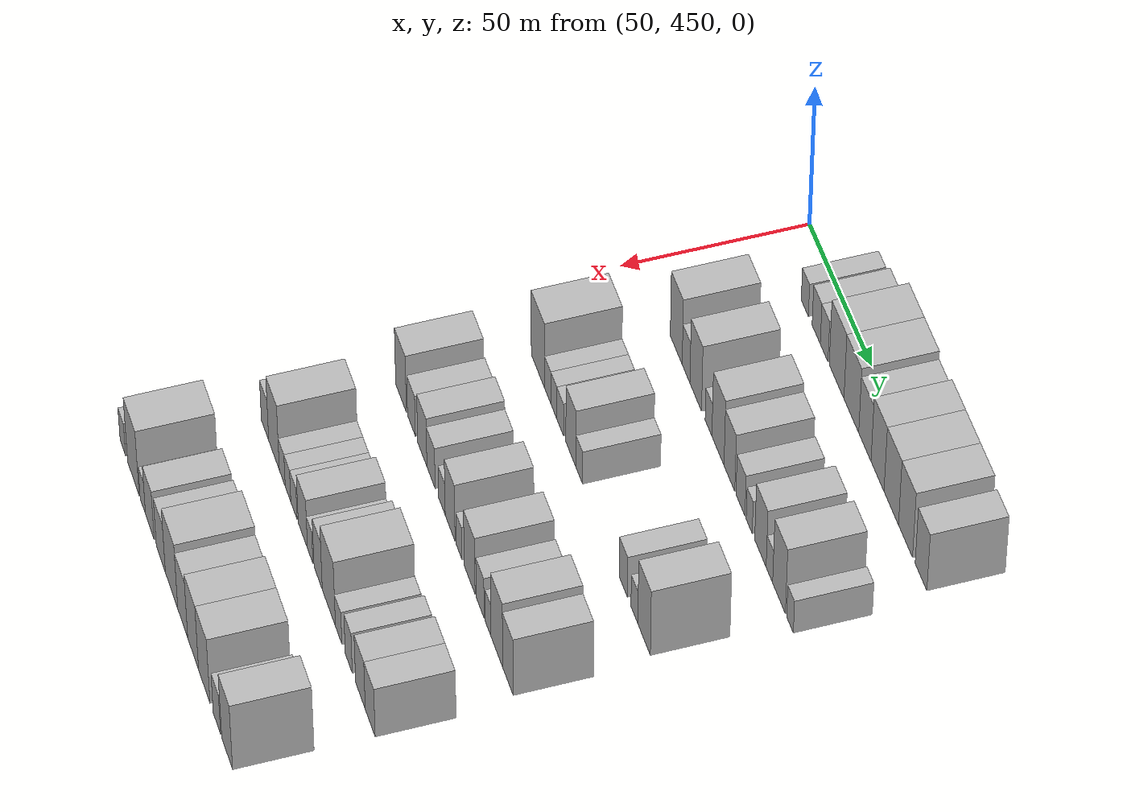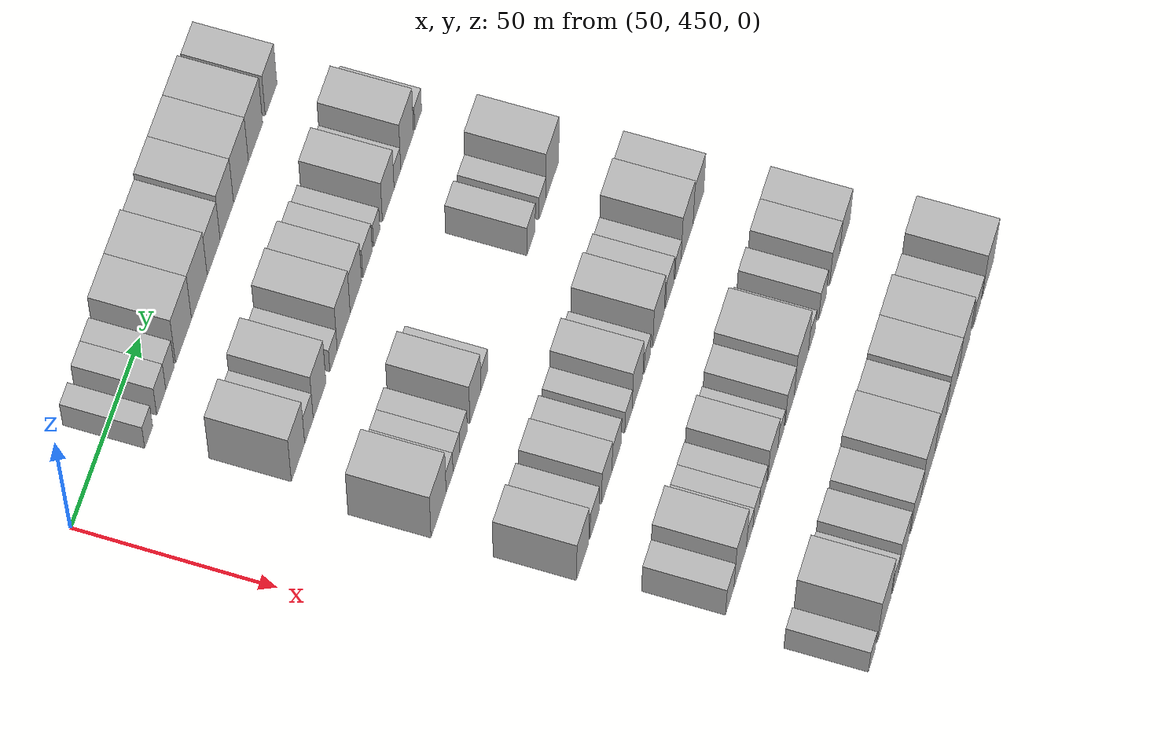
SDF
<sdf version="1.6">
 <world name="default">
  <model name="building_108">
   <static>1</static>
   <pose>50.0000 476.8534 0 0.000000 0.000000 0.000000</pose>
   <link name="link">
    <pose>0 0 6.00 0 0 0</pose>
    <collision name="collision"><geometry><box><size>20.0000 5.7782 12.0000</size></box></geometry></collision>
    <visual name="visual">
     <cast_shadows>0</cast_shadows>
     <geometry><box><size>20.0000 5.7782 12.0000</size></box></geometry>
     <material>
      <script>
       <uri>model://HANNAS_wall/materials/scripts</uri>
       <uri>model://HANNAS_wall/materials/textures</uri>
       <name>vrc/HANNAS_wall</name>
      </script>
     </material>
    </visual>
   </link>
  </model>
  <model name="building_109">
   <static>1</static>
   <pose>50.0000 486.0334 0 0.000000 0.000000 0.000000</pose>
   <link name="link">
    <pose>0 0 7.50 0 0 0</pose>
    <collision name="collision"><geometry><box><size>20.0000 6.5818 15.0000</size></box></geometry></collision>
    <visual name="visual">
     <cast_shadows>0</cast_shadows>
     <geometry><box><size>20.0000 6.5818 15.0000</size></box></geometry>
     <material>
      <script>
       <uri>model://HANNAS_wall/materials/scripts</uri>
       <uri>model://HANNAS_wall/materials/textures</uri>
       <name>vrc/HANNAS_wall</name>
      </script>
     </material>
    </visual>
   </link>
  </model>
  <model name="building_110">
   <static>1</static>
   <pose>50.0000 492.4070 0 0.000000 0.000000 0.000000</pose>
   <link name="link">
    <pose>0 0 7.50 0 0 0</pose>
    <collision name="collision"><geometry><box><size>20.0000 6.1655 15.0000</size></box></geometry></collision>
    <visual name="visual">
     <cast_shadows>0</cast_shadows>
     <geometry><box><size>20.0000 6.1655 15.0000</size></box></geometry>
     <material>
      <script>
       <uri>model://HANNAS_wall/materials/scripts</uri>
       <uri>model://HANNAS_wall/materials/textures</uri>
       <name>vrc/HANNAS_wall</name>
      </script>
     </material>
    </visual>
   </link>
  </model>
  <model name="building_111">
   <static>1</static>
   <pose>50.0000 502.3611 0 0.000000 0.000000 0.000000</pose>
   <link name="link">
    <pose>0 0 12.00 0 0 0</pose>
    <collision name="collision"><geometry><box><size>20.0000 11.7425 24.0000</size></box></geometry></collision>
    <visual name="visual">
     <cast_shadows>0</cast_shadows>
     <geometry><box><size>20.0000 11.7425 24.0000</size></box></geometry>
     <material>
      <script>
       <uri>model://HANNAS_wall/materials/scripts</uri>
       <uri>model://HANNAS_wall/materials/textures</uri>
       <name>vrc/HANNAS_wall</name>
      </script>
     </material>
    </visual>
   </link>
  </model>
  <model name="building_112">
   <static>1</static>
   <pose>50.0000 514.0625 0 0.000000 0.000000 0.000000</pose>
   <link name="link">
    <pose>0 0 12.00 0 0 0</pose>
    <collision name="collision"><geometry><box><size>20.0000 11.6603 24.0000</size></box></geometry></collision>
    <visual name="visual">
     <cast_shadows>0</cast_shadows>
     <geometry><box><size>20.0000 11.6603 24.0000</size></box></geometry>
     <material>
      <script>
       <uri>model://HANNAS_wall/materials/scripts</uri>
       <uri>model://HANNAS_wall/materials/textures</uri>
       <name>vrc/HANNAS_wall</name>
      </script>
     </material>
    </visual>
   </link>
  </model>
  <model name="building_113">
   <static>1</static>
   <pose>50.0000 524.7127 0 0.000000 0.000000 0.000000</pose>
   <link name="link">
    <pose>0 0 10.50 0 0 0</pose>
    <collision name="collision"><geometry><box><size>20.0000 9.6402 21.0000</size></box></geometry></collision>
    <visual name="visual">
     <cast_shadows>0</cast_shadows>
     <geometry><box><size>20.0000 9.6402 21.0000</size></box></geometry>
     <material>
      <script>
       <uri>model://HANNAS_wall/materials/scripts</uri>
       <uri>model://HANNAS_wall/materials/textures</uri>
       <name>vrc/HANNAS_wall</name>
      </script>
     </material>
    </visual>
   </link>
  </model>
  <model name="building_114">
   <static>1</static>
   <pose>50.0000 534.5840 0 0.000000 0.000000 0.000000</pose>
   <link name="link">
    <pose>0 0 12.00 0 0 0</pose>
    <collision name="collision"><geometry><box><size>20.0000 10.1022 24.0000</size></box></geometry></collision>
    <visual name="visual">
     <cast_shadows>0</cast_shadows>
     <geometry><box><size>20.0000 10.1022 24.0000</size></box></geometry>
     <material>
      <script>
       <uri>model://HANNAS_wall/materials/scripts</uri>
       <uri>model://HANNAS_wall/materials/textures</uri>
       <name>vrc/HANNAS_wall</name>
      </script>
     </material>
    </visual>
   </link>
  </model>
  <model name="building_115">
   <static>1</static>
   <pose>50.0000 545.2295 0 0.000000 0.000000 0.000000</pose>
   <link name="link">
    <pose>0 0 12.00 0 0 0</pose>
    <collision name="collision"><geometry><box><size>20.0000 11.1888 24.0000</size></box></geometry></collision>
    <visual name="visual">
     <cast_shadows>0</cast_shadows>
     <geometry><box><size>20.0000 11.1888 24.0000</size></box></geometry>
     <material>
      <script>
       <uri>model://HANNAS_wall/materials/scripts</uri>
       <uri>model://HANNAS_wall/materials/textures</uri>
       <name>vrc/HANNAS_wall</name>
      </script>
     </material>
    </visual>
   </link>
  </model>
  <model name="building_116">
   <static>1</static>
   <pose>50.0000 556.2054 0 0.000000 0.000000 0.000000</pose>
   <link name="link">
    <pose>0 0 12.00 0 0 0</pose>
    <collision name="collision"><geometry><box><size>20.0000 10.7631 24.0000</size></box></geometry></collision>
    <visual name="visual">
     <cast_shadows>0</cast_shadows>
     <geometry><box><size>20.0000 10.7631 24.0000</size></box></geometry>
     <material>
      <script>
       <uri>model://HANNAS_wall/materials/scripts</uri>
       <uri>model://HANNAS_wall/materials/textures</uri>
       <name>vrc/HANNAS_wall</name>
      </script>
     </material>
    </visual>
   </link>
  </model>
  <model name="building_117">
   <static>1</static>
   <pose>50.0000 568.0357 0 0.000000 0.000000 0.000000</pose>
   <link name="link">
    <pose>0 0 10.50 0 0 0</pose>
    <collision name="collision"><geometry><box><size>20.0000 8.8975 21.0000</size></box></geometry></collision>
    <visual name="visual">
     <cast_shadows>0</cast_shadows>
     <geometry><box><size>20.0000 8.8975 21.0000</size></box></geometry>
     <material>
      <script>
       <uri>model://HANNAS_wall/materials/scripts</uri>
       <uri>model://HANNAS_wall/materials/textures</uri>
       <name>vrc/HANNAS_wall</name>
      </script>
     </material>
    </visual>
   </link>
  </model>
  <model name="building_232">
   <static>1</static>
   <pose>85.0000 480.9673 0 0.000000 0.000000 0.000000</pose>
   <link name="link">
    <pose>0 0 12.00 0 0 0</pose>
    <collision name="collision"><geometry><box><size>20.0000 9.9538 24.0000</size></box></geometry></collision>
    <visual name="visual">
     <cast_shadows>0</cast_shadows>
     <geometry><box><size>20.0000 9.9538 24.0000</size></box></geometry>
     <material>
      <script>
       <uri>model://HANNAS_wall/materials/scripts</uri>
       <uri>model://HANNAS_wall/materials/textures</uri>
       <name>vrc/HANNAS_wall</name>
      </script>
     </material>
    </visual>
   </link>
  </model>
  <model name="building_233">
   <static>1</static>
   <pose>85.0000 489.1557 0 0.000000 0.000000 0.000000</pose>
   <link name="link">
    <pose>0 0 7.50 0 0 0</pose>
    <collision name="collision"><geometry><box><size>20.0000 6.4229 15.0000</size></box></geometry></collision>
    <visual name="visual">
     <cast_shadows>0</cast_shadows>
     <geometry><box><size>20.0000 6.4229 15.0000</size></box></geometry>
     <material>
      <script>
       <uri>model://HANNAS_wall/materials/scripts</uri>
       <uri>model://HANNAS_wall/materials/textures</uri>
       <name>vrc/HANNAS_wall</name>
      </script>
     </material>
    </visual>
   </link>
  </model>
  <model name="building_234">
   <static>1</static>
   <pose>85.0000 497.1807 0 0.000000 0.000000 0.000000</pose>
   <link name="link">
    <pose>0 0 12.00 0 0 0</pose>
    <collision name="collision"><geometry><box><size>20.0000 9.6271 24.0000</size></box></geometry></collision>
    <visual name="visual">
     <cast_shadows>0</cast_shadows>
     <geometry><box><size>20.0000 9.6271 24.0000</size></box></geometry>
     <material>
      <script>
       <uri>model://HANNAS_wall/materials/scripts</uri>
       <uri>model://HANNAS_wall/materials/textures</uri>
       <name>vrc/HANNAS_wall</name>
      </script>
     </material>
    </visual>
   </link>
  </model>
  <model name="building_235">
   <static>1</static>
   <pose>85.0000 507.7611 0 0.000000 0.000000 0.000000</pose>
   <link name="link">
    <pose>0 0 6.00 0 0 0</pose>
    <collision name="collision"><geometry><box><size>20.0000 5.5336 12.0000</size></box></geometry></collision>
    <visual name="visual">
     <cast_shadows>0</cast_shadows>
     <geometry><box><size>20.0000 5.5336 12.0000</size></box></geometry>
     <material>
      <script>
       <uri>model://HANNAS_wall/materials/scripts</uri>
       <uri>model://HANNAS_wall/materials/textures</uri>
       <name>vrc/HANNAS_wall</name>
      </script>
     </material>
    </visual>
   </link>
  </model>
  <model name="building_236">
   <static>1</static>
   <pose>85.0000 515.4776 0 0.000000 0.000000 0.000000</pose>
   <link name="link">
    <pose>0 0 12.00 0 0 0</pose>
    <collision name="collision"><geometry><box><size>20.0000 9.8996 24.0000</size></box></geometry></collision>
    <visual name="visual">
     <cast_shadows>0</cast_shadows>
     <geometry><box><size>20.0000 9.8996 24.0000</size></box></geometry>
     <material>
      <script>
       <uri>model://HANNAS_wall/materials/scripts</uri>
       <uri>model://HANNAS_wall/materials/textures</uri>
       <name>vrc/HANNAS_wall</name>
      </script>
     </material>
    </visual>
   </link>
  </model>
  <model name="building_237">
   <static>1</static>
   <pose>85.0000 524.7871 0 0.000000 0.000000 0.000000</pose>
   <link name="link">
    <pose>0 0 10.50 0 0 0</pose>
    <collision name="collision"><geometry><box><size>20.0000 8.7194 21.0000</size></box></geometry></collision>
    <visual name="visual">
     <cast_shadows>0</cast_shadows>
     <geometry><box><size>20.0000 8.7194 21.0000</size></box></geometry>
     <material>
      <script>
       <uri>model://HANNAS_wall/materials/scripts</uri>
       <uri>model://HANNAS_wall/materials/textures</uri>
       <name>vrc/HANNAS_wall</name>
      </script>
     </material>
    </visual>
   </link>
  </model>
  <model name="building_238">
   <static>1</static>
   <pose>85.0000 533.7659 0 0.000000 0.000000 0.000000</pose>
   <link name="link">
    <pose>0 0 7.50 0 0 0</pose>
    <collision name="collision"><geometry><box><size>20.0000 7.2380 15.0000</size></box></geometry></collision>
    <visual name="visual">
     <cast_shadows>0</cast_shadows>
     <geometry><box><size>20.0000 7.2380 15.0000</size></box></geometry>
     <material>
      <script>
       <uri>model://HANNAS_wall/materials/scripts</uri>
       <uri>model://HANNAS_wall/materials/textures</uri>
       <name>vrc/HANNAS_wall</name>
      </script>
     </material>
    </visual>
   </link>
  </model>
  <model name="building_239">
   <static>1</static>
   <pose>85.0000 540.8009 0 0.000000 0.000000 0.000000</pose>
   <link name="link">
    <pose>0 0 6.00 0 0 0</pose>
    <collision name="collision"><geometry><box><size>20.0000 4.8321 12.0000</size></box></geometry></collision>
    <visual name="visual">
     <cast_shadows>0</cast_shadows>
     <geometry><box><size>20.0000 4.8321 12.0000</size></box></geometry>
     <material>
      <script>
       <uri>model://HANNAS_wall/materials/scripts</uri>
       <uri>model://HANNAS_wall/materials/textures</uri>
       <name>vrc/HANNAS_wall</name>
      </script>
     </material>
    </visual>
   </link>
  </model>
  <model name="building_240">
   <static>1</static>
   <pose>85.0000 549.7596 0 0.000000 0.000000 0.000000</pose>
   <link name="link">
    <pose>0 0 10.50 0 0 0</pose>
    <collision name="collision"><geometry><box><size>20.0000 9.0853 21.0000</size></box></geometry></collision>
    <visual name="visual">
     <cast_shadows>0</cast_shadows>
     <geometry><box><size>20.0000 9.0853 21.0000</size></box></geometry>
     <material>
      <script>
       <uri>model://HANNAS_wall/materials/scripts</uri>
       <uri>model://HANNAS_wall/materials/textures</uri>
       <name>vrc/HANNAS_wall</name>
      </script>
     </material>
    </visual>
   </link>
  </model>
  <model name="building_241">
   <static>1</static>
   <pose>85.0000 556.8891 0 0.000000 0.000000 0.000000</pose>
   <link name="link">
    <pose>0 0 6.00 0 0 0</pose>
    <collision name="collision"><geometry><box><size>20.0000 5.1736 12.0000</size></box></geometry></collision>
    <visual name="visual">
     <cast_shadows>0</cast_shadows>
     <geometry><box><size>20.0000 5.1736 12.0000</size></box></geometry>
     <material>
      <script>
       <uri>model://HANNAS_wall/materials/scripts</uri>
       <uri>model://HANNAS_wall/materials/textures</uri>
       <name>vrc/HANNAS_wall</name>
      </script>
     </material>
    </visual>
   </link>
  </model>
  <model name="building_242">
   <static>1</static>
   <pose>85.0000 564.4912 0 0.000000 0.000000 0.000000</pose>
   <link name="link">
    <pose>0 0 12.00 0 0 0</pose>
    <collision name="collision"><geometry><box><size>20.0000 10.0307 24.0000</size></box></geometry></collision>
    <visual name="visual">
     <cast_shadows>0</cast_shadows>
     <geometry><box><size>20.0000 10.0307 24.0000</size></box></geometry>
     <material>
      <script>
       <uri>model://HANNAS_wall/materials/scripts</uri>
       <uri>model://HANNAS_wall/materials/textures</uri>
       <name>vrc/HANNAS_wall</name>
      </script>
     </material>
    </visual>
   </link>
  </model>
  <model name="building_243">
   <static>1</static>
   <pose>85.0000 573.1451 0 0.000000 0.000000 0.000000</pose>
   <link name="link">
    <pose>0 0 6.00 0 0 0</pose>
    <collision name="collision"><geometry><box><size>20.0000 5.2771 12.0000</size></box></geometry></collision>
    <visual name="visual">
     <cast_shadows>0</cast_shadows>
     <geometry><box><size>20.0000 5.2771 12.0000</size></box></geometry>
     <material>
      <script>
       <uri>model://HANNAS_wall/materials/scripts</uri>
       <uri>model://HANNAS_wall/materials/textures</uri>
       <name>vrc/HANNAS_wall</name>
      </script>
     </material>
    </visual>
   </link>
  </model>
  <model name="building_355">
   <static>1</static>
   <pose>120.0000 477.8535 0 0.000000 0.000000 0.000000</pose>
   <link name="link">
    <pose>0 0 12.00 0 0 0</pose>
    <collision name="collision"><geometry><box><size>20.0000 11.5922 24.0000</size></box></geometry></collision>
    <visual name="visual">
     <cast_shadows>0</cast_shadows>
     <geometry><box><size>20.0000 11.5922 24.0000</size></box></geometry>
     <material>
      <script>
       <uri>model://HANNAS_wall/materials/scripts</uri>
       <uri>model://HANNAS_wall/materials/textures</uri>
       <name>vrc/HANNAS_wall</name>
      </script>
     </material>
    </visual>
   </link>
  </model>
  <model name="building_356">
   <static>1</static>
   <pose>120.0000 486.3181 0 0.000000 0.000000 0.000000</pose>
   <link name="link">
    <pose>0 0 6.00 0 0 0</pose>
    <collision name="collision"><geometry><box><size>20.0000 5.3369 12.0000</size></box></geometry></collision>
    <visual name="visual">
     <cast_shadows>0</cast_shadows>
     <geometry><box><size>20.0000 5.3369 12.0000</size></box></geometry>
     <material>
      <script>
       <uri>model://HANNAS_wall/materials/scripts</uri>
       <uri>model://HANNAS_wall/materials/textures</uri>
       <name>vrc/HANNAS_wall</name>
      </script>
     </material>
    </visual>
   </link>
  </model>
  <model name="building_357">
   <static>1</static>
   <pose>120.0000 491.5768 0 0.000000 0.000000 0.000000</pose>
   <link name="link">
    <pose>0 0 6.00 0 0 0</pose>
    <collision name="collision"><geometry><box><size>20.0000 5.1805 12.0000</size></box></geometry></collision>
    <visual name="visual">
     <cast_shadows>0</cast_shadows>
     <geometry><box><size>20.0000 5.1805 12.0000</size></box></geometry>
     <material>
      <script>
       <uri>model://HANNAS_wall/materials/scripts</uri>
       <uri>model://HANNAS_wall/materials/textures</uri>
       <name>vrc/HANNAS_wall</name>
      </script>
     </material>
    </visual>
   </link>
  </model>
  <model name="building_358">
   <static>1</static>
   <pose>120.0000 497.0789 0 0.000000 0.000000 0.000000</pose>
   <link name="link">
    <pose>0 0 6.00 0 0 0</pose>
    <collision name="collision"><geometry><box><size>20.0000 5.8236 12.0000</size></box></geometry></collision>
    <visual name="visual">
     <cast_shadows>0</cast_shadows>
     <geometry><box><size>20.0000 5.8236 12.0000</size></box></geometry>
     <material>
      <script>
       <uri>model://HANNAS_wall/materials/scripts</uri>
       <uri>model://HANNAS_wall/materials/textures</uri>
       <name>vrc/HANNAS_wall</name>
      </script>
     </material>
    </visual>
   </link>
  </model>
  <model name="building_359">
   <static>1</static>
   <pose>120.0000 506.2852 0 0.000000 0.000000 0.000000</pose>
   <link name="link">
    <pose>0 0 10.50 0 0 0</pose>
    <collision name="collision"><geometry><box><size>20.0000 8.5891 21.0000</size></box></geometry></collision>
    <visual name="visual">
     <cast_shadows>0</cast_shadows>
     <geometry><box><size>20.0000 8.5891 21.0000</size></box></geometry>
     <material>
      <script>
       <uri>model://HANNAS_wall/materials/scripts</uri>
       <uri>model://HANNAS_wall/materials/textures</uri>
       <name>vrc/HANNAS_wall</name>
      </script>
     </material>
    </visual>
   </link>
  </model>
  <model name="building_360">
   <static>1</static>
   <pose>120.0000 513.3887 0 0.000000 0.000000 0.000000</pose>
   <link name="link">
    <pose>0 0 6.00 0 0 0</pose>
    <collision name="collision"><geometry><box><size>20.0000 5.6178 12.0000</size></box></geometry></collision>
    <visual name="visual">
     <cast_shadows>0</cast_shadows>
     <geometry><box><size>20.0000 5.6178 12.0000</size></box></geometry>
     <material>
      <script>
       <uri>model://HANNAS_wall/materials/scripts</uri>
       <uri>model://HANNAS_wall/materials/textures</uri>
       <name>vrc/HANNAS_wall</name>
      </script>
     </material>
    </visual>
   </link>
  </model>
  <model name="building_361">
   <static>1</static>
   <pose>120.0000 550.3050 0 0.000000 0.000000 0.000000</pose>
   <link name="link">
    <pose>0 0 7.50 0 0 0</pose>
    <collision name="collision"><geometry><box><size>20.0000 6.7383 15.0000</size></box></geometry></collision>
    <visual name="visual">
     <cast_shadows>0</cast_shadows>
     <geometry><box><size>20.0000 6.7383 15.0000</size></box></geometry>
     <material>
      <script>
       <uri>model://HANNAS_wall/materials/scripts</uri>
       <uri>model://HANNAS_wall/materials/textures</uri>
       <name>vrc/HANNAS_wall</name>
      </script>
     </material>
    </visual>
   </link>
  </model>
  <model name="building_362">
   <static>1</static>
   <pose>120.0000 559.4986 0 0.000000 0.000000 0.000000</pose>
   <link name="link">
    <pose>0 0 6.00 0 0 0</pose>
    <collision name="collision"><geometry><box><size>20.0000 5.6490 12.0000</size></box></geometry></collision>
    <visual name="visual">
     <cast_shadows>0</cast_shadows>
     <geometry><box><size>20.0000 5.6490 12.0000</size></box></geometry>
     <material>
      <script>
       <uri>model://HANNAS_wall/materials/scripts</uri>
       <uri>model://HANNAS_wall/materials/textures</uri>
       <name>vrc/HANNAS_wall</name>
      </script>
     </material>
    </visual>
   </link>
  </model>
  <model name="building_363">
   <static>1</static>
   <pose>120.0000 567.4306 0 0.000000 0.000000 0.000000</pose>
   <link name="link">
    <pose>0 0 12.00 0 0 0</pose>
    <collision name="collision"><geometry><box><size>20.0000 10.2149 24.0000</size></box></geometry></collision>
    <visual name="visual">
     <cast_shadows>0</cast_shadows>
     <geometry><box><size>20.0000 10.2149 24.0000</size></box></geometry>
     <material>
      <script>
       <uri>model://HANNAS_wall/materials/scripts</uri>
       <uri>model://HANNAS_wall/materials/textures</uri>
       <name>vrc/HANNAS_wall</name>
      </script>
     </material>
    </visual>
   </link>
  </model>
  <model name="building_477">
   <static>1</static>
   <pose>155.0000 476.6463 0 0.000000 0.000000 0.000000</pose>
   <link name="link">
    <pose>0 0 10.50 0 0 0</pose>
    <collision name="collision"><geometry><box><size>20.0000 9.6530 21.0000</size></box></geometry></collision>
    <visual name="visual">
     <cast_shadows>0</cast_shadows>
     <geometry><box><size>20.0000 9.6530 21.0000</size></box></geometry>
     <material>
      <script>
       <uri>model://HANNAS_wall/materials/scripts</uri>
       <uri>model://HANNAS_wall/materials/textures</uri>
       <name>vrc/HANNAS_wall</name>
      </script>
     </material>
    </visual>
   </link>
  </model>
  <model name="building_478">
   <static>1</static>
   <pose>155.0000 486.0501 0 0.000000 0.000000 0.000000</pose>
   <link name="link">
    <pose>0 0 7.50 0 0 0</pose>
    <collision name="collision"><geometry><box><size>20.0000 7.1548 15.0000</size></box></geometry></collision>
    <visual name="visual">
     <cast_shadows>0</cast_shadows>
     <geometry><box><size>20.0000 7.1548 15.0000</size></box></geometry>
     <material>
      <script>
       <uri>model://HANNAS_wall/materials/scripts</uri>
       <uri>model://HANNAS_wall/materials/textures</uri>
       <name>vrc/HANNAS_wall</name>
      </script>
     </material>
    </visual>
   </link>
  </model>
  <model name="building_479">
   <static>1</static>
   <pose>155.0000 495.7822 0 0.000000 0.000000 0.000000</pose>
   <link name="link">
    <pose>0 0 9.00 0 0 0</pose>
    <collision name="collision"><geometry><box><size>20.0000 8.3094 18.0000</size></box></geometry></collision>
    <visual name="visual">
     <cast_shadows>0</cast_shadows>
     <geometry><box><size>20.0000 8.3094 18.0000</size></box></geometry>
     <material>
      <script>
       <uri>model://HANNAS_wall/materials/scripts</uri>
       <uri>model://HANNAS_wall/materials/textures</uri>
       <name>vrc/HANNAS_wall</name>
      </script>
     </material>
    </visual>
   </link>
  </model>
  <model name="building_480">
   <static>1</static>
   <pose>155.0000 503.6037 0 0.000000 0.000000 0.000000</pose>
   <link name="link">
    <pose>0 0 7.50 0 0 0</pose>
    <collision name="collision"><geometry><box><size>20.0000 7.3335 15.0000</size></box></geometry></collision>
    <visual name="visual">
     <cast_shadows>0</cast_shadows>
     <geometry><box><size>20.0000 7.3335 15.0000</size></box></geometry>
     <material>
      <script>
       <uri>model://HANNAS_wall/materials/scripts</uri>
       <uri>model://HANNAS_wall/materials/textures</uri>
       <name>vrc/HANNAS_wall</name>
      </script>
     </material>
    </visual>
   </link>
  </model>
  <model name="building_481">
   <static>1</static>
   <pose>155.0000 513.2215 0 0.000000 0.000000 0.000000</pose>
   <link name="link">
    <pose>0 0 6.00 0 0 0</pose>
    <collision name="collision"><geometry><box><size>20.0000 5.9022 12.0000</size></box></geometry></collision>
    <visual name="visual">
     <cast_shadows>0</cast_shadows>
     <geometry><box><size>20.0000 5.9022 12.0000</size></box></geometry>
     <material>
      <script>
       <uri>model://HANNAS_wall/materials/scripts</uri>
       <uri>model://HANNAS_wall/materials/textures</uri>
       <name>vrc/HANNAS_wall</name>
      </script>
     </material>
    </visual>
   </link>
  </model>
  <model name="building_482">
   <static>1</static>
   <pose>155.0000 520.5018 0 0.000000 0.000000 0.000000</pose>
   <link name="link">
    <pose>0 0 10.50 0 0 0</pose>
    <collision name="collision"><geometry><box><size>20.0000 8.6583 21.0000</size></box></geometry></collision>
    <visual name="visual">
     <cast_shadows>0</cast_shadows>
     <geometry><box><size>20.0000 8.6583 21.0000</size></box></geometry>
     <material>
      <script>
       <uri>model://HANNAS_wall/materials/scripts</uri>
       <uri>model://HANNAS_wall/materials/textures</uri>
       <name>vrc/HANNAS_wall</name>
      </script>
     </material>
    </visual>
   </link>
  </model>
  <model name="building_483">
   <static>1</static>
   <pose>155.0000 528.3558 0 0.000000 0.000000 0.000000</pose>
   <link name="link">
    <pose>0 0 6.00 0 0 0</pose>
    <collision name="collision"><geometry><box><size>20.0000 5.0499 12.0000</size></box></geometry></collision>
    <visual name="visual">
     <cast_shadows>0</cast_shadows>
     <geometry><box><size>20.0000 5.0499 12.0000</size></box></geometry>
     <material>
      <script>
       <uri>model://HANNAS_wall/materials/scripts</uri>
       <uri>model://HANNAS_wall/materials/textures</uri>
       <name>vrc/HANNAS_wall</name>
      </script>
     </material>
    </visual>
   </link>
  </model>
  <model name="building_484">
   <static>1</static>
   <pose>155.0000 537.5668 0 0.000000 0.000000 0.000000</pose>
   <link name="link">
    <pose>0 0 10.50 0 0 0</pose>
    <collision name="collision"><geometry><box><size>20.0000 9.3721 21.0000</size></box></geometry></collision>
    <visual name="visual">
     <cast_shadows>0</cast_shadows>
     <geometry><box><size>20.0000 9.3721 21.0000</size></box></geometry>
     <material>
      <script>
       <uri>model://HANNAS_wall/materials/scripts</uri>
       <uri>model://HANNAS_wall/materials/textures</uri>
       <name>vrc/HANNAS_wall</name>
      </script>
     </material>
    </visual>
   </link>
  </model>
  <model name="building_485">
   <static>1</static>
   <pose>155.0000 546.6877 0 0.000000 0.000000 0.000000</pose>
   <link name="link">
    <pose>0 0 7.50 0 0 0</pose>
    <collision name="collision"><geometry><box><size>20.0000 6.8697 15.0000</size></box></geometry></collision>
    <visual name="visual">
     <cast_shadows>0</cast_shadows>
     <geometry><box><size>20.0000 6.8697 15.0000</size></box></geometry>
     <material>
      <script>
       <uri>model://HANNAS_wall/materials/scripts</uri>
       <uri>model://HANNAS_wall/materials/textures</uri>
       <name>vrc/HANNAS_wall</name>
      </script>
     </material>
    </visual>
   </link>
  </model>
  <model name="building_486">
   <static>1</static>
   <pose>155.0000 553.5681 0 0.000000 0.000000 0.000000</pose>
   <link name="link">
    <pose>0 0 6.00 0 0 0</pose>
    <collision name="collision"><geometry><box><size>20.0000 4.8910 12.0000</size></box></geometry></collision>
    <visual name="visual">
     <cast_shadows>0</cast_shadows>
     <geometry><box><size>20.0000 4.8910 12.0000</size></box></geometry>
     <material>
      <script>
       <uri>model://HANNAS_wall/materials/scripts</uri>
       <uri>model://HANNAS_wall/materials/textures</uri>
       <name>vrc/HANNAS_wall</name>
      </script>
     </material>
    </visual>
   </link>
  </model>
  <model name="building_487">
   <static>1</static>
   <pose>155.0000 561.0278 0 0.000000 0.000000 0.000000</pose>
   <link name="link">
    <pose>0 0 12.00 0 0 0</pose>
    <collision name="collision"><geometry><box><size>20.0000 10.0286 24.0000</size></box></geometry></collision>
    <visual name="visual">
     <cast_shadows>0</cast_shadows>
     <geometry><box><size>20.0000 10.0286 24.0000</size></box></geometry>
     <material>
      <script>
       <uri>model://HANNAS_wall/materials/scripts</uri>
       <uri>model://HANNAS_wall/materials/textures</uri>
       <name>vrc/HANNAS_wall</name>
      </script>
     </material>
    </visual>
   </link>
  </model>
  <model name="building_488">
   <static>1</static>
   <pose>155.0000 570.4711 0 0.000000 0.000000 0.000000</pose>
   <link name="link">
    <pose>0 0 10.50 0 0 0</pose>
    <collision name="collision"><geometry><box><size>20.0000 8.8579 21.0000</size></box></geometry></collision>
    <visual name="visual">
     <cast_shadows>0</cast_shadows>
     <geometry><box><size>20.0000 8.8579 21.0000</size></box></geometry>
     <material>
      <script>
       <uri>model://HANNAS_wall/materials/scripts</uri>
       <uri>model://HANNAS_wall/materials/textures</uri>
       <name>vrc/HANNAS_wall</name>
      </script>
     </material>
    </visual>
   </link>
  </model>
  <model name="building_607">
   <static>1</static>
   <pose>190.0000 477.1397 0 0.000000 0.000000 0.000000</pose>
   <link name="link">
    <pose>0 0 7.50 0 0 0</pose>
    <collision name="collision"><geometry><box><size>20.0000 6.9206 15.0000</size></box></geometry></collision>
    <visual name="visual">
     <cast_shadows>0</cast_shadows>
     <geometry><box><size>20.0000 6.9206 15.0000</size></box></geometry>
     <material>
      <script>
       <uri>model://HANNAS_wall/materials/scripts</uri>
       <uri>model://HANNAS_wall/materials/textures</uri>
       <name>vrc/HANNAS_wall</name>
      </script>
     </material>
    </visual>
   </link>
  </model>
  <model name="building_608">
   <static>1</static>
   <pose>190.0000 485.6102 0 0.000000 0.000000 0.000000</pose>
   <link name="link">
    <pose>0 0 12.00 0 0 0</pose>
    <collision name="collision"><geometry><box><size>20.0000 10.0204 24.0000</size></box></geometry></collision>
    <visual name="visual">
     <cast_shadows>0</cast_shadows>
     <geometry><box><size>20.0000 10.0204 24.0000</size></box></geometry>
     <material>
      <script>
       <uri>model://HANNAS_wall/materials/scripts</uri>
       <uri>model://HANNAS_wall/materials/textures</uri>
       <name>vrc/HANNAS_wall</name>
      </script>
     </material>
    </visual>
   </link>
  </model>
  <model name="building_609">
   <static>1</static>
   <pose>190.0000 493.3635 0 0.000000 0.000000 0.000000</pose>
   <link name="link">
    <pose>0 0 6.00 0 0 0</pose>
    <collision name="collision"><geometry><box><size>20.0000 5.4864 12.0000</size></box></geometry></collision>
    <visual name="visual">
     <cast_shadows>0</cast_shadows>
     <geometry><box><size>20.0000 5.4864 12.0000</size></box></geometry>
     <material>
      <script>
       <uri>model://HANNAS_wall/materials/scripts</uri>
       <uri>model://HANNAS_wall/materials/textures</uri>
       <name>vrc/HANNAS_wall</name>
      </script>
     </material>
    </visual>
   </link>
  </model>
  <model name="building_610">
   <static>1</static>
   <pose>190.0000 498.7189 0 0.000000 0.000000 0.000000</pose>
   <link name="link">
    <pose>0 0 6.00 0 0 0</pose>
    <collision name="collision"><geometry><box><size>20.0000 5.2244 12.0000</size></box></geometry></collision>
    <visual name="visual">
     <cast_shadows>0</cast_shadows>
     <geometry><box><size>20.0000 5.2244 12.0000</size></box></geometry>
     <material>
      <script>
       <uri>model://HANNAS_wall/materials/scripts</uri>
       <uri>model://HANNAS_wall/materials/textures</uri>
       <name>vrc/HANNAS_wall</name>
      </script>
     </material>
    </visual>
   </link>
  </model>
  <model name="building_611">
   <static>1</static>
   <pose>190.0000 504.2691 0 0.000000 0.000000 0.000000</pose>
   <link name="link">
    <pose>0 0 6.00 0 0 0</pose>
    <collision name="collision"><geometry><box><size>20.0000 5.8760 12.0000</size></box></geometry></collision>
    <visual name="visual">
     <cast_shadows>0</cast_shadows>
     <geometry><box><size>20.0000 5.8760 12.0000</size></box></geometry>
     <material>
      <script>
       <uri>model://HANNAS_wall/materials/scripts</uri>
       <uri>model://HANNAS_wall/materials/textures</uri>
       <name>vrc/HANNAS_wall</name>
      </script>
     </material>
    </visual>
   </link>
  </model>
  <model name="building_612">
   <static>1</static>
   <pose>190.0000 512.4683 0 0.000000 0.000000 0.000000</pose>
   <link name="link">
    <pose>0 0 9.00 0 0 0</pose>
    <collision name="collision"><geometry><box><size>20.0000 8.5224 18.0000</size></box></geometry></collision>
    <visual name="visual">
     <cast_shadows>0</cast_shadows>
     <geometry><box><size>20.0000 8.5224 18.0000</size></box></geometry>
     <material>
      <script>
       <uri>model://HANNAS_wall/materials/scripts</uri>
       <uri>model://HANNAS_wall/materials/textures</uri>
       <name>vrc/HANNAS_wall</name>
      </script>
     </material>
    </visual>
   </link>
  </model>
  <model name="building_613">
   <static>1</static>
   <pose>190.0000 519.2357 0 0.000000 0.000000 0.000000</pose>
   <link name="link">
    <pose>0 0 6.00 0 0 0</pose>
    <collision name="collision"><geometry><box><size>20.0000 5.0125 12.0000</size></box></geometry></collision>
    <visual name="visual">
     <cast_shadows>0</cast_shadows>
     <geometry><box><size>20.0000 5.0125 12.0000</size></box></geometry>
     <material>
      <script>
       <uri>model://HANNAS_wall/materials/scripts</uri>
       <uri>model://HANNAS_wall/materials/textures</uri>
       <name>vrc/HANNAS_wall</name>
      </script>
     </material>
    </visual>
   </link>
  </model>
  <model name="building_614">
   <static>1</static>
   <pose>190.0000 526.5103 0 0.000000 0.000000 0.000000</pose>
   <link name="link">
    <pose>0 0 9.00 0 0 0</pose>
    <collision name="collision"><geometry><box><size>20.0000 7.5366 18.0000</size></box></geometry></collision>
    <visual name="visual">
     <cast_shadows>0</cast_shadows>
     <geometry><box><size>20.0000 7.5366 18.0000</size></box></geometry>
     <material>
      <script>
       <uri>model://HANNAS_wall/materials/scripts</uri>
       <uri>model://HANNAS_wall/materials/textures</uri>
       <name>vrc/HANNAS_wall</name>
      </script>
     </material>
    </visual>
   </link>
  </model>
  <model name="building_615">
   <static>1</static>
   <pose>190.0000 536.2456 0 0.000000 0.000000 0.000000</pose>
   <link name="link">
    <pose>0 0 12.00 0 0 0</pose>
    <collision name="collision"><geometry><box><size>20.0000 11.9341 24.0000</size></box></geometry></collision>
    <visual name="visual">
     <cast_shadows>0</cast_shadows>
     <geometry><box><size>20.0000 11.9341 24.0000</size></box></geometry>
     <material>
      <script>
       <uri>model://HANNAS_wall/materials/scripts</uri>
       <uri>model://HANNAS_wall/materials/textures</uri>
       <name>vrc/HANNAS_wall</name>
      </script>
     </material>
    </visual>
   </link>
  </model>
  <model name="building_616">
   <static>1</static>
   <pose>190.0000 545.1127 0 0.000000 0.000000 0.000000</pose>
   <link name="link">
    <pose>0 0 6.00 0 0 0</pose>
    <collision name="collision"><geometry><box><size>20.0000 5.8002 12.0000</size></box></geometry></collision>
    <visual name="visual">
     <cast_shadows>0</cast_shadows>
     <geometry><box><size>20.0000 5.8002 12.0000</size></box></geometry>
     <material>
      <script>
       <uri>model://HANNAS_wall/materials/scripts</uri>
       <uri>model://HANNAS_wall/materials/textures</uri>
       <name>vrc/HANNAS_wall</name>
      </script>
     </material>
    </visual>
   </link>
  </model>
  <model name="building_617">
   <static>1</static>
   <pose>190.0000 554.1620 0 0.000000 0.000000 0.000000</pose>
   <link name="link">
    <pose>0 0 7.50 0 0 0</pose>
    <collision name="collision"><geometry><box><size>20.0000 6.2983 15.0000</size></box></geometry></collision>
    <visual name="visual">
     <cast_shadows>0</cast_shadows>
     <geometry><box><size>20.0000 6.2983 15.0000</size></box></geometry>
     <material>
      <script>
       <uri>model://HANNAS_wall/materials/scripts</uri>
       <uri>model://HANNAS_wall/materials/textures</uri>
       <name>vrc/HANNAS_wall</name>
      </script>
     </material>
    </visual>
   </link>
  </model>
  <model name="building_618">
   <static>1</static>
   <pose>190.0000 564.5860 0 0.000000 0.000000 0.000000</pose>
   <link name="link">
    <pose>0 0 9.00 0 0 0</pose>
    <collision name="collision"><geometry><box><size>20.0000 8.5497 18.0000</size></box></geometry></collision>
    <visual name="visual">
     <cast_shadows>0</cast_shadows>
     <geometry><box><size>20.0000 8.5497 18.0000</size></box></geometry>
     <material>
      <script>
       <uri>model://HANNAS_wall/materials/scripts</uri>
       <uri>model://HANNAS_wall/materials/textures</uri>
       <name>vrc/HANNAS_wall</name>
      </script>
     </material>
    </visual>
   </link>
  </model>
  <model name="building_619">
   <static>1</static>
   <pose>190.0000 573.2235 0 0.000000 0.000000 0.000000</pose>
   <link name="link">
    <pose>0 0 9.00 0 0 0</pose>
    <collision name="collision"><geometry><box><size>20.0000 8.7254 18.0000</size></box></geometry></collision>
    <visual name="visual">
     <cast_shadows>0</cast_shadows>
     <geometry><box><size>20.0000 8.7254 18.0000</size></box></geometry>
     <material>
      <script>
       <uri>model://HANNAS_wall/materials/scripts</uri>
       <uri>model://HANNAS_wall/materials/textures</uri>
       <name>vrc/HANNAS_wall</name>
      </script>
     </material>
    </visual>
   </link>
  </model>
  <model name="building_733">
   <static>1</static>
   <pose>225.0000 472.5632 0 0.000000 0.000000 0.000000</pose>
   <link name="link">
    <pose>0 0 6.00 0 0 0</pose>
    <collision name="collision"><geometry><box><size>20.0000 5.4198 12.0000</size></box></geometry></collision>
    <visual name="visual">
     <cast_shadows>0</cast_shadows>
     <geometry><box><size>20.0000 5.4198 12.0000</size></box></geometry>
     <material>
      <script>
       <uri>model://HANNAS_wall/materials/scripts</uri>
       <uri>model://HANNAS_wall/materials/textures</uri>
       <name>vrc/HANNAS_wall</name>
      </script>
     </material>
    </visual>
   </link>
  </model>
  <model name="building_734">
   <static>1</static>
   <pose>225.0000 482.9969 0 0.000000 0.000000 0.000000</pose>
   <link name="link">
    <pose>0 0 12.00 0 0 0</pose>
    <collision name="collision"><geometry><box><size>20.0000 11.4476 24.0000</size></box></geometry></collision>
    <visual name="visual">
     <cast_shadows>0</cast_shadows>
     <geometry><box><size>20.0000 11.4476 24.0000</size></box></geometry>
     <material>
      <script>
       <uri>model://HANNAS_wall/materials/scripts</uri>
       <uri>model://HANNAS_wall/materials/textures</uri>
       <name>vrc/HANNAS_wall</name>
      </script>
     </material>
    </visual>
   </link>
  </model>
  <model name="building_735">
   <static>1</static>
   <pose>225.0000 492.2996 0 0.000000 0.000000 0.000000</pose>
   <link name="link">
    <pose>0 0 6.00 0 0 0</pose>
    <collision name="collision"><geometry><box><size>20.0000 5.1578 12.0000</size></box></geometry></collision>
    <visual name="visual">
     <cast_shadows>0</cast_shadows>
     <geometry><box><size>20.0000 5.1578 12.0000</size></box></geometry>
     <material>
      <script>
       <uri>model://HANNAS_wall/materials/scripts</uri>
       <uri>model://HANNAS_wall/materials/textures</uri>
       <name>vrc/HANNAS_wall</name>
      </script>
     </material>
    </visual>
   </link>
  </model>
  <model name="building_736">
   <static>1</static>
   <pose>225.0000 499.1376 0 0.000000 0.000000 0.000000</pose>
   <link name="link">
    <pose>0 0 9.00 0 0 0</pose>
    <collision name="collision"><geometry><box><size>20.0000 8.5182 18.0000</size></box></geometry></collision>
    <visual name="visual">
     <cast_shadows>0</cast_shadows>
     <geometry><box><size>20.0000 8.5182 18.0000</size></box></geometry>
     <material>
      <script>
       <uri>model://HANNAS_wall/materials/scripts</uri>
       <uri>model://HANNAS_wall/materials/textures</uri>
       <name>vrc/HANNAS_wall</name>
      </script>
     </material>
    </visual>
   </link>
  </model>
  <model name="building_737">
   <static>1</static>
   <pose>225.0000 509.7912 0 0.000000 0.000000 0.000000</pose>
   <link name="link">
    <pose>0 0 9.00 0 0 0</pose>
    <collision name="collision"><geometry><box><size>20.0000 8.7891 18.0000</size></box></geometry></collision>
    <visual name="visual">
     <cast_shadows>0</cast_shadows>
     <geometry><box><size>20.0000 8.7891 18.0000</size></box></geometry>
     <material>
      <script>
       <uri>model://HANNAS_wall/materials/scripts</uri>
       <uri>model://HANNAS_wall/materials/textures</uri>
       <name>vrc/HANNAS_wall</name>
      </script>
     </material>
    </visual>
   </link>
  </model>
  <model name="building_738">
   <static>1</static>
   <pose>225.0000 520.1275 0 0.000000 0.000000 0.000000</pose>
   <link name="link">
    <pose>0 0 12.00 0 0 0</pose>
    <collision name="collision"><geometry><box><size>20.0000 11.8835 24.0000</size></box></geometry></collision>
    <visual name="visual">
     <cast_shadows>0</cast_shadows>
     <geometry><box><size>20.0000 11.8835 24.0000</size></box></geometry>
     <material>
      <script>
       <uri>model://HANNAS_wall/materials/scripts</uri>
       <uri>model://HANNAS_wall/materials/textures</uri>
       <name>vrc/HANNAS_wall</name>
      </script>
     </material>
    </visual>
   </link>
  </model>
  <model name="building_739">
   <static>1</static>
   <pose>225.0000 530.8205 0 0.000000 0.000000 0.000000</pose>
   <link name="link">
    <pose>0 0 10.50 0 0 0</pose>
    <collision name="collision"><geometry><box><size>20.0000 9.5025 21.0000</size></box></geometry></collision>
    <visual name="visual">
     <cast_shadows>0</cast_shadows>
     <geometry><box><size>20.0000 9.5025 21.0000</size></box></geometry>
     <material>
      <script>
       <uri>model://HANNAS_wall/materials/scripts</uri>
       <uri>model://HANNAS_wall/materials/textures</uri>
       <name>vrc/HANNAS_wall</name>
      </script>
     </material>
    </visual>
   </link>
  </model>
  <model name="building_740">
   <static>1</static>
   <pose>225.0000 540.6843 0 0.000000 0.000000 0.000000</pose>
   <link name="link">
    <pose>0 0 12.00 0 0 0</pose>
    <collision name="collision"><geometry><box><size>20.0000 10.2251 24.0000</size></box></geometry></collision>
    <visual name="visual">
     <cast_shadows>0</cast_shadows>
     <geometry><box><size>20.0000 10.2251 24.0000</size></box></geometry>
     <material>
      <script>
       <uri>model://HANNAS_wall/materials/scripts</uri>
       <uri>model://HANNAS_wall/materials/textures</uri>
       <name>vrc/HANNAS_wall</name>
      </script>
     </material>
    </visual>
   </link>
  </model>
  <model name="building_741">
   <static>1</static>
   <pose>225.0000 551.1449 0 0.000000 0.000000 0.000000</pose>
   <link name="link">
    <pose>0 0 12.00 0 0 0</pose>
    <collision name="collision"><geometry><box><size>20.0000 10.6962 24.0000</size></box></geometry></collision>
    <visual name="visual">
     <cast_shadows>0</cast_shadows>
     <geometry><box><size>20.0000 10.6962 24.0000</size></box></geometry>
     <material>
      <script>
       <uri>model://HANNAS_wall/materials/scripts</uri>
       <uri>model://HANNAS_wall/materials/textures</uri>
       <name>vrc/HANNAS_wall</name>
      </script>
     </material>
    </visual>
   </link>
  </model>
  <model name="building_742">
   <static>1</static>
   <pose>225.0000 562.9381 0 0.000000 0.000000 0.000000</pose>
   <link name="link">
    <pose>0 0 7.50 0 0 0</pose>
    <collision name="collision"><geometry><box><size>20.0000 6.8903 15.0000</size></box></geometry></collision>
    <visual name="visual">
     <cast_shadows>0</cast_shadows>
     <geometry><box><size>20.0000 6.8903 15.0000</size></box></geometry>
     <material>
      <script>
       <uri>model://HANNAS_wall/materials/scripts</uri>
       <uri>model://HANNAS_wall/materials/textures</uri>
       <name>vrc/HANNAS_wall</name>
      </script>
     </material>
    </visual>
   </link>
  </model>
  <model name="building_743">
   <static>1</static>
   <pose>225.0000 572.3959 0 0.000000 0.000000 0.000000</pose>
   <link name="link">
    <pose>0 0 12.00 0 0 0</pose>
    <collision name="collision"><geometry><box><size>20.0000 10.0251 24.0000</size></box></geometry></collision>
    <visual name="visual">
     <cast_shadows>0</cast_shadows>
     <geometry><box><size>20.0000 10.0251 24.0000</size></box></geometry>
     <material>
      <script>
       <uri>model://HANNAS_wall/materials/scripts</uri>
       <uri>model://HANNAS_wall/materials/textures</uri>
       <name>vrc/HANNAS_wall</name>
      </script>
     </material>
    </visual>
   </link>
  </model>
 </world>
</sdf>
